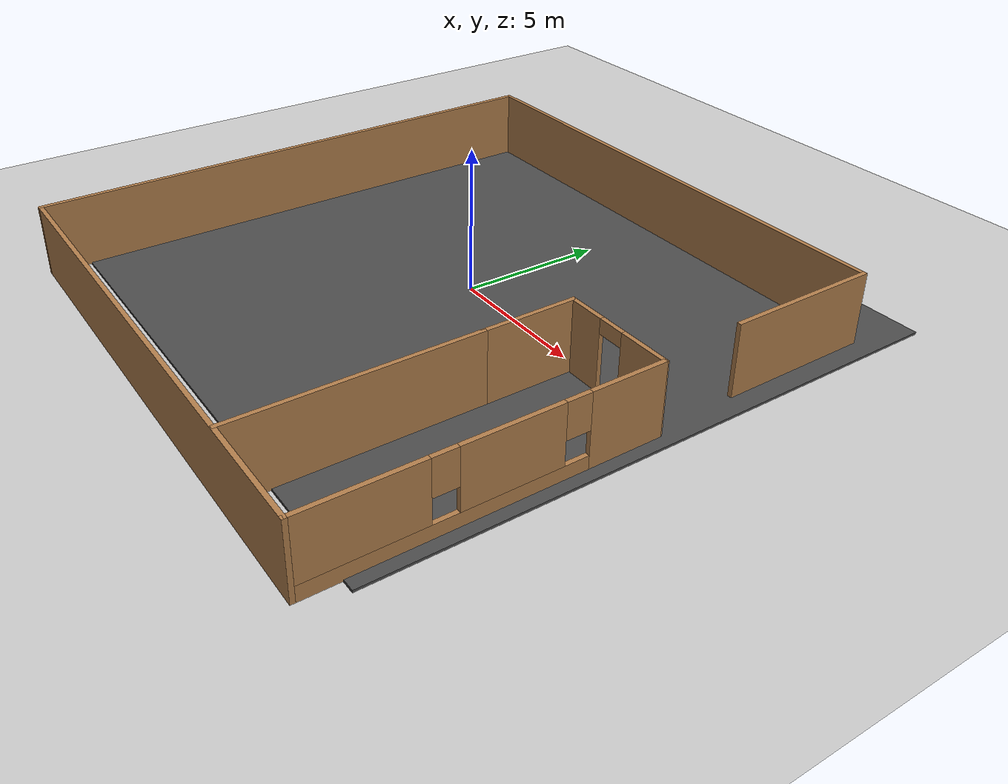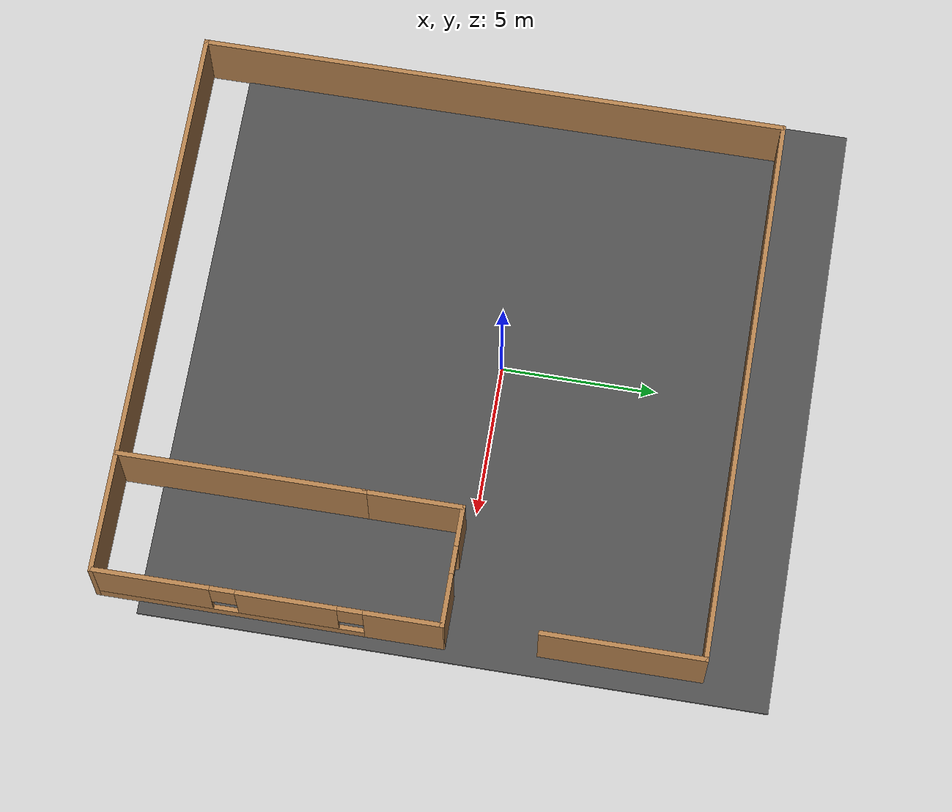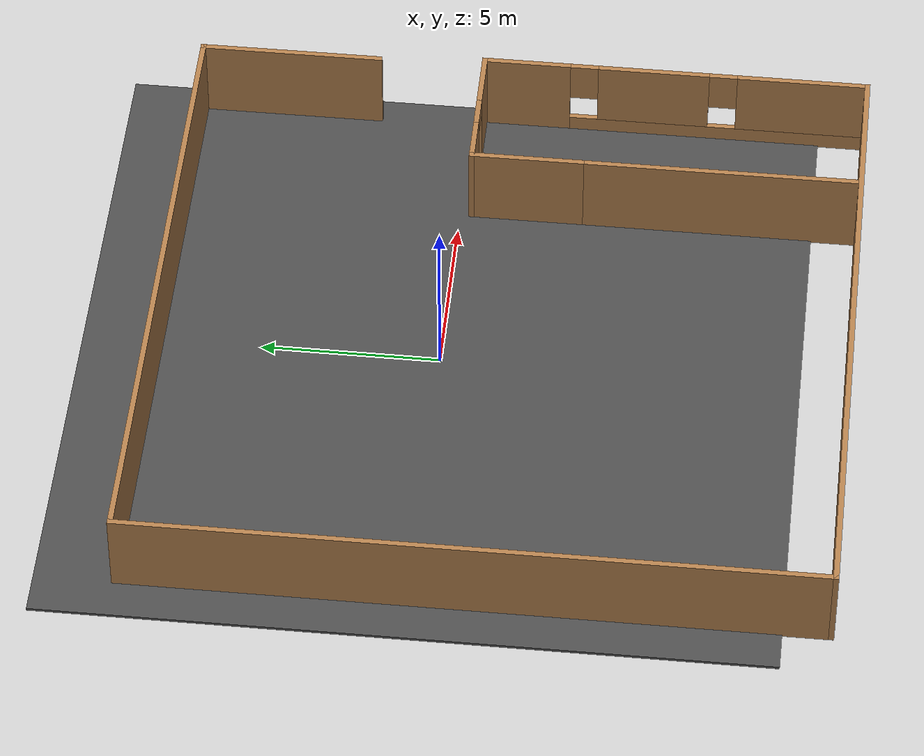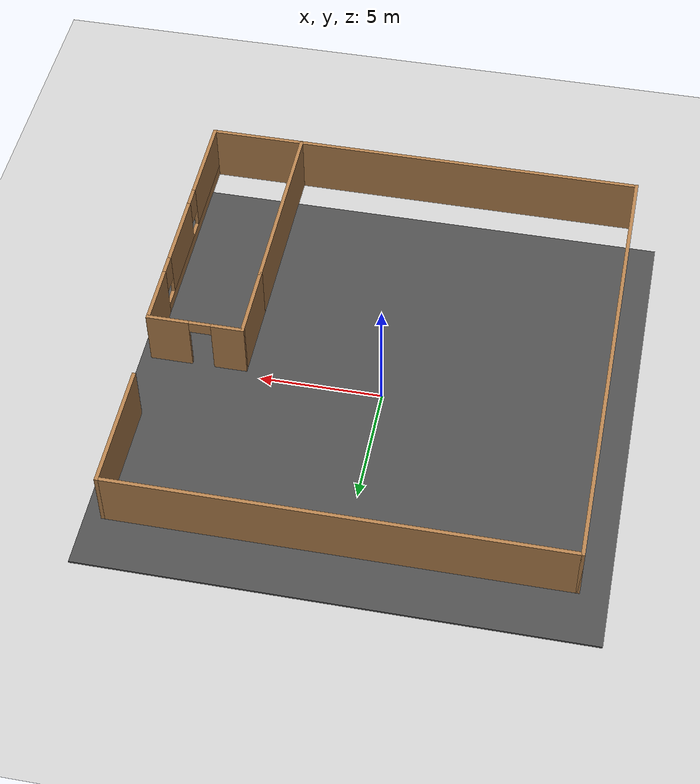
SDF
<sdf version="1.7">
 <world name="default">
  <light name="sun" type="directional">
   <pose>0 0 10 0 -0 0</pose>
   <diffuse>0.8 0.8 0.8 1</diffuse>
   <specular>0.2 0.2 0.2 1</specular>
   <attenuation>
    <range>1000</range>
    <constant>0.9</constant>
    <linear>0.01</linear>
    <quadratic>0.001</quadratic>
   </attenuation>
   <direction>-0.5 0.1 -0.9</direction>
   <spot><inner_angle>0</inner_angle><outer_angle>0</outer_angle><falloff>0</falloff></spot>
  </light>
  <model name="ground_plane">
   <static>1</static>
   <link name="link">
    <collision name="collision">
     <geometry><plane><normal>0 0 1</normal><size>100 100</size></plane></geometry>
     <surface><friction><ode><mu>100</mu><mu2>50</mu2></ode></friction></surface>
    </collision>
    <visual name="visual">
     <cast_shadows>0</cast_shadows>
     <geometry><plane><normal>0 0 1</normal><size>100 100</size></plane></geometry>
     <material>
      <script><uri>file://media/materials/scripts/gazebo.material</uri><name>Gazebo/Grey</name></script>
     </material>
    </visual>
   </link>
  </model>
  <model name="asphalt_plane">
   <static>1</static>
   <link name="link">
    <collision name="collision"><geometry><box><size>20 20 0.1</size></box></geometry></collision>
    <visual name="visual">
     <cast_shadows>0</cast_shadows>
     <geometry><box><size>20 20 0.1</size></box></geometry>
     <material>
      <script>
       <uri>model://asphalt_plane/materials/scripts</uri>
       <uri>model://asphalt_plane/materials/textures</uri>
       <name>vrc/asphalt</name>
      </script>
     </material>
    </visual>
   </link>
  </model>
  <physics name="default_physics" default="0" type="ode">
   <ode>
    <solver>
     <type>quick</type>
     <iters>10</iters>
     <sor>1.3</sor>
     <use_dynamic_moi_rescaling>0</use_dynamic_moi_rescaling>
    </solver>
    <constraints>
     <cfm>0</cfm>
     <erp>0.2</erp>
     <contact_max_correcting_vel>100</contact_max_correcting_vel>
     <contact_surface_layer>0.001</contact_surface_layer>
    </constraints>
   </ode>
   <max_step_size>0.002</max_step_size>
   <real_time_factor>1</real_time_factor>
   <real_time_update_rate>500</real_time_update_rate>
  </physics>
  <gravity>0 0 -9.8066</gravity>
  <magnetic_field>6e-06 2.3e-05 -4.2e-05</magnetic_field>
  <atmosphere type="adiabatic"/>
  <scene><ambient>0.4 0.4 0.4 1</ambient><background>0.7 0.7 0.7 1</background><shadows>1</shadows></scene>
  <audio><device>default</device></audio>
  <spherical_coordinates>
   <surface_model>EARTH_WGS84</surface_model>
   <latitude_deg>0</latitude_deg>
   <longitude_deg>0</longitude_deg>
   <elevation>0</elevation>
   <heading_deg>0</heading_deg>
  </spherical_coordinates>
  <model name="warehouse.world">
   <pose>0.341818 -1.74506 0 0 -0 0</pose>
   <link name="Wall_10">
    <collision name="Wall_10_Collision">
     <geometry><box><size>19.25 0.15 2.5</size></box></geometry>
     <pose>0 0 1.25 0 -0 0</pose>
    </collision>
    <visual name="Wall_10_Visual">
     <pose>0 0 1.25 0 -0 0</pose>
     <geometry><box><size>19.25 0.15 2.5</size></box></geometry>
     <material>
      <script><uri>file://media/materials/scripts/gazebo.material</uri><name>Gazebo/Wood</name></script>
      <ambient>1 1 1 1</ambient>
     </material>
     <meta><layer>0</layer></meta>
    </visual>
    <pose>-9.175 -0 0 0 -0 1.5708</pose>
   </link>
   <link name="Wall_11">
    <collision name="Wall_11_Collision">
     <geometry><box><size>18.25 0.15 2.5</size></box></geometry>
     <pose>0 0 1.25 0 -0 0</pose>
    </collision>
    <visual name="Wall_11_Visual">
     <pose>0 0 1.25 0 -0 0</pose>
     <geometry><box><size>18.25 0.15 2.5</size></box></geometry>
     <material>
      <script><uri>file://media/materials/scripts/gazebo.material</uri><name>Gazebo/Wood</name></script>
      <ambient>1 1 1 1</ambient>
     </material>
     <meta><layer>0</layer></meta>
    </visual>
    <pose>-0.125 9.55 0 0 -0 0</pose>
   </link>
   <link name="Wall_12">
    <collision name="Wall_12_Collision">
     <geometry><box><size>5.25 0.15 2.5</size></box></geometry>
     <pose>0 0 1.25 0 -0 0</pose>
    </collision>
    <visual name="Wall_12_Visual">
     <pose>0 0 1.25 0 -0 0</pose>
     <geometry><box><size>5.25 0.15 2.5</size></box></geometry>
     <material>
      <script><uri>file://media/materials/scripts/gazebo.material</uri><name>Gazebo/Wood</name></script>
      <ambient>1 1 1 1</ambient>
     </material>
     <meta><layer>0</layer></meta>
    </visual>
    <pose>8.925 7 0 0 -0 -1.5708</pose>
   </link>
   <link name="Wall_14">
    <collision name="Wall_14_Collision">
     <geometry><box><size>3.25 0.15 2.5</size></box></geometry>
     <pose>0 0 1.25 0 -0 0</pose>
    </collision>
    <visual name="Wall_14_Visual">
     <pose>0 0 1.25 0 -0 0</pose>
     <geometry><box><size>3.25 0.15 2.5</size></box></geometry>
     <material>
      <script><uri>file://media/materials/scripts/gazebo.material</uri><name>Gazebo/Wood</name></script>
      <ambient>1 1 1 1</ambient>
     </material>
     <meta><layer>0</layer></meta>
    </visual>
    <pose>5.325 -0.121264 0 0 -0 -1.5708</pose>
   </link>
   <link name="Wall_15">
    <collision name="Wall_15_Collision">
     <geometry><box><size>8 0.15 2.5</size></box></geometry>
     <pose>0 0 1.25 0 -0 0</pose>
    </collision>
    <visual name="Wall_15_Visual">
     <pose>0 0 1.25 0 -0 0</pose>
     <geometry><box><size>8 0.15 2.5</size></box></geometry>
     <material>
      <script><uri>file://media/materials/scripts/gazebo.material</uri><name>Gazebo/Wood</name></script>
      <ambient>1 1 1 1</ambient>
     </material>
     <meta><layer>0</layer></meta>
    </visual>
    <pose>5.325 -5.59626 0 0 -0 -1.5708</pose>
   </link>
   <link name="Wall_7">
    <pose>7.25 1.42874 0 0 -0 0</pose>
    <visual name="Wall_7_Visual_0">
     <pose>-1.32235 0 1.25 0 -0 0</pose>
     <geometry><box><size>1.35531 0.15 2.5</size></box></geometry>
     <material>
      <script><uri>file://media/materials/scripts/gazebo.material</uri><name>Gazebo/Wood</name></script>
      <ambient>1 1 1 1</ambient>
     </material>
     <meta><layer>0</layer></meta>
    </visual>
    <collision name="Wall_7_Collision_0">
     <geometry><box><size>1.35531 0.15 2.5</size></box></geometry>
     <pose>-1.32235 0 1.25 0 -0 0</pose>
    </collision>
    <visual name="Wall_7_Visual_1">
     <pose>1.12765 0 1.25 0 -0 0</pose>
     <geometry><box><size>1.74469 0.15 2.5</size></box></geometry>
     <material>
      <script><uri>file://media/materials/scripts/gazebo.material</uri><name>Gazebo/Wood</name></script>
      <ambient>1 1 1 1</ambient>
     </material>
     <meta><layer>0</layer></meta>
    </visual>
    <collision name="Wall_7_Collision_1">
     <geometry><box><size>1.74469 0.15 2.5</size></box></geometry>
     <pose>1.12765 0 1.25 0 -0 0</pose>
    </collision>
    <visual name="Wall_7_Visual_2">
     <pose>-0.194692 0 2.25 0 -0 0</pose>
     <geometry><box><size>0.9 0.15 0.5</size></box></geometry>
     <material>
      <script><uri>file://media/materials/scripts/gazebo.material</uri><name>Gazebo/Wood</name></script>
      <ambient>1 1 1 1</ambient>
     </material>
     <meta><layer>0</layer></meta>
    </visual>
    <collision name="Wall_7_Collision_2">
     <geometry><box><size>0.9 0.15 0.5</size></box></geometry>
     <pose>-0.194692 0 2.25 0 -0 0</pose>
    </collision>
   </link>
   <link name="Wall_8">
    <pose>9.175 -4.08126 0 0 -0 -1.5708</pose>
    <visual name="Wall_8_Visual_0">
     <pose>-4.28997 0 1.25 0 -0 0</pose>
     <geometry><box><size>2.50754 0.15 2.5</size></box></geometry>
     <material>
      <script><uri>file://media/materials/scripts/gazebo.material</uri><name>Gazebo/Wood</name></script>
      <ambient>1 1 1 1</ambient>
     </material>
     <meta><layer>0</layer></meta>
    </visual>
    <collision name="Wall_8_Collision_0">
     <geometry><box><size>2.50754 0.15 2.5</size></box></geometry>
     <pose>-4.28997 0 1.25 0 -0 0</pose>
    </collision>
    <visual name="Wall_8_Visual_1">
     <pose>1.25377 0 0.25 0 -0 0</pose>
     <geometry><box><size>8.57994 0.15 0.5</size></box></geometry>
     <material>
      <script><uri>file://media/materials/scripts/gazebo.material</uri><name>Gazebo/Wood</name></script>
      <ambient>1 1 1 1</ambient>
     </material>
     <meta><layer>0</layer></meta>
    </visual>
    <collision name="Wall_8_Collision_1">
     <geometry><box><size>8.57994 0.15 0.5</size></box></geometry>
     <pose>1.25377 0 0.25 0 -0 0</pose>
    </collision>
    <visual name="Wall_8_Visual_2">
     <pose>-0.641148 0 1.5 0 -0 0</pose>
     <geometry><box><size>3.1901 0.15 2</size></box></geometry>
     <material>
      <script><uri>file://media/materials/scripts/gazebo.material</uri><name>Gazebo/Wood</name></script>
      <ambient>1 1 1 1</ambient>
     </material>
     <meta><layer>0</layer></meta>
    </visual>
    <collision name="Wall_8_Collision_2">
     <geometry><box><size>3.1901 0.15 2</size></box></geometry>
     <pose>-0.641148 0 1.5 0 -0 0</pose>
    </collision>
    <visual name="Wall_8_Visual_3">
     <pose>3.64882 0 1.5 0 -0 0</pose>
     <geometry><box><size>3.78984 0.15 2</size></box></geometry>
     <material>
      <script><uri>file://media/materials/scripts/gazebo.material</uri><name>Gazebo/Wood</name></script>
      <ambient>1 1 1 1</ambient>
     </material>
     <meta><layer>0</layer></meta>
    </visual>
    <collision name="Wall_8_Collision_3">
     <geometry><box><size>3.78984 0.15 2</size></box></geometry>
     <pose>3.64882 0 1.5 0 -0 0</pose>
    </collision>
    <visual name="Wall_8_Visual_4">
     <pose>-2.6362 0 1.9 0 -0 0</pose>
     <geometry><box><size>0.8 0.15 1.2</size></box></geometry>
     <material>
      <script><uri>file://media/materials/scripts/gazebo.material</uri><name>Gazebo/Wood</name></script>
      <ambient>1 1 1 1</ambient>
     </material>
     <meta><layer>0</layer></meta>
    </visual>
    <collision name="Wall_8_Collision_4">
     <geometry><box><size>0.8 0.15 1.2</size></box></geometry>
     <pose>-2.6362 0 1.9 0 -0 0</pose>
    </collision>
    <visual name="Wall_8_Visual_5">
     <pose>1.3539 0 1.9 0 -0 0</pose>
     <geometry><box><size>0.8 0.15 1.2</size></box></geometry>
     <material>
      <script><uri>file://media/materials/scripts/gazebo.material</uri><name>Gazebo/Wood</name></script>
      <ambient>1 1 1 1</ambient>
     </material>
     <meta><layer>0</layer></meta>
    </visual>
    <collision name="Wall_8_Collision_5">
     <geometry><box><size>0.8 0.15 1.2</size></box></geometry>
     <pose>1.3539 0 1.9 0 -0 0</pose>
    </collision>
   </link>
   <link name="Wall_9">
    <collision name="Wall_9_Collision">
     <geometry><box><size>18.5 0.15 2.5</size></box></geometry>
     <pose>0 0 1.25 0 -0 0</pose>
    </collision>
    <visual name="Wall_9_Visual">
     <pose>0 0 1.25 0 -0 0</pose>
     <geometry><box><size>18.5 0.15 2.5</size></box></geometry>
     <material>
      <script><uri>file://media/materials/scripts/gazebo.material</uri><name>Gazebo/Wood</name></script>
      <ambient>1 1 1 1</ambient>
     </material>
     <meta><layer>0</layer></meta>
    </visual>
    <pose>-0 -9.55 0 0 -0 3.14159</pose>
   </link>
   <static>1</static>
  </model>
 </world>
</sdf>
